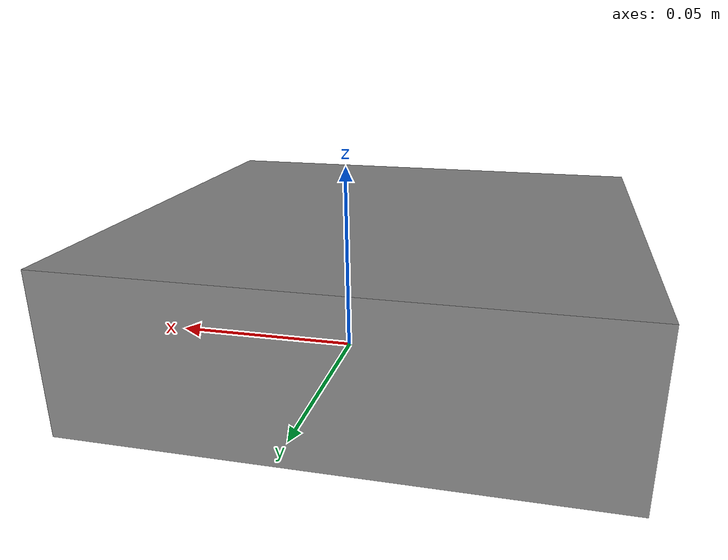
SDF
<?xml version="1.0"?>
<sdf version="1.7">
  <model name="box">
    <link name="box_body">
      <pose>0 -0.049133 0 0 0 0</pose>
      <visual name="box_visual">
        <pose> 0 0 0 0 0 0</pose>
        <geometry>
          <box>
            <size>0.16 0.15 0.05</size>
          </box>
        </geometry>
        <material>
          <diffuse>0.5 0.5 0.5 1</diffuse>
        </material>
      </visual>
      <collision name="box">
        <pose> 0 0 0. 0 0 0</pose>
        <geometry>
          <box>
            <size>0.16 0.15 0.05</size>
          </box>
        </geometry>
        <drake:proximity_properties>
          <drake:compliant_hydroelastic/>
          <drake:hydroelastic_modulus>1e7</drake:hydroelastic_modulus>
          <drake:mu_dynamic>0.5</drake:mu_dynamic>
          <drake:hunt_crossley_dissipation>1.25</drake:hunt_crossley_dissipation>
        </drake:proximity_properties>
      </collision>
    </link>
  </model>
</sdf>
